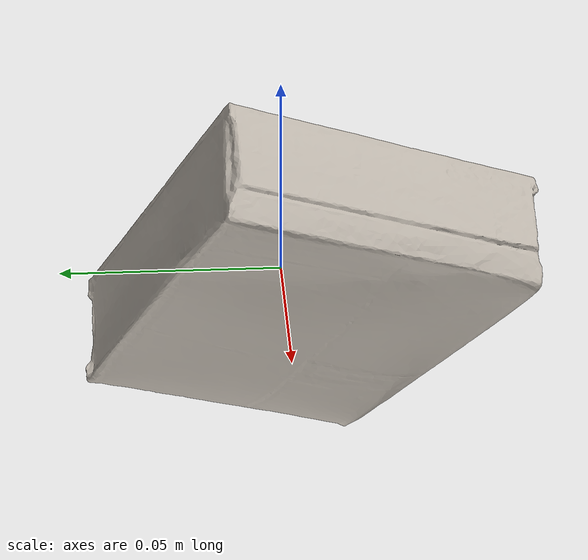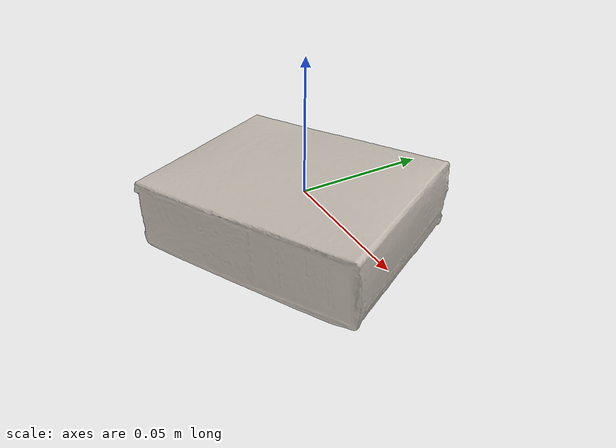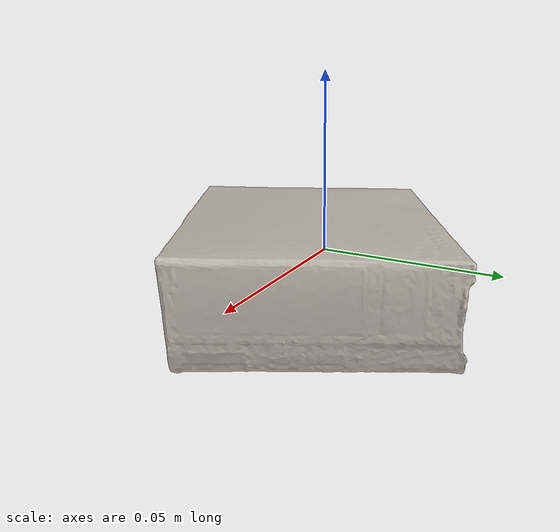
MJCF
<mujoco model="bread">
  <asset>
    <mesh file="nontextured.stl" name="obj_mesh" scale="0.8 0.8 0.8"/>
    <texture file="../../../../../textures/bread.png" type="2d" name="tex-bread" />
    <material name="bread" reflectance="0.7" texrepeat="15 15" texture="tex-bread" texuniform="true"/>
  </asset>
  <worldbody>
    <body>
      <body name="collision">
        <geom pos="-0.0005049999999999985 -0.019123000000000005 -0.018947500000000003" mesh="obj_mesh" type="mesh" solimp="0.998 0.998 0.001" solref="0.001 1" density="50" friction="0.95 0.3 0.1"  material="bread" group="1" condim="4"/>
      </body>
      <body name="visual">
        <geom pos="-0.0005049999999999985 -0.019123000000000005 -0.018947500000000003" mesh="obj_mesh" type="mesh" material="bread"  conaffinity="0" contype="0"  group="0" mass="0.0001"/>
        <geom pos="-0.0005049999999999985 -0.019123000000000005 -0.018947500000000003" mesh="obj_mesh" type="mesh" material="bread"  conaffinity="0" contype="0"  group="1" mass="0.0001"/>
      </body>
      <site rgba="0 0 0 0" size="0.005" pos="0 0 -0.0194445" name="bottom_site"/>
      <site rgba="0 0 0 0" size="0.005" pos="0 0 0.0194445" name="top_site"/>
      <site rgba="0 0 0 0" size="0.005" pos="0.068969 0.064378 0.0194445" name="horizontal_radius_site"/>
    </body>
  </worldbody>
</mujoco>
